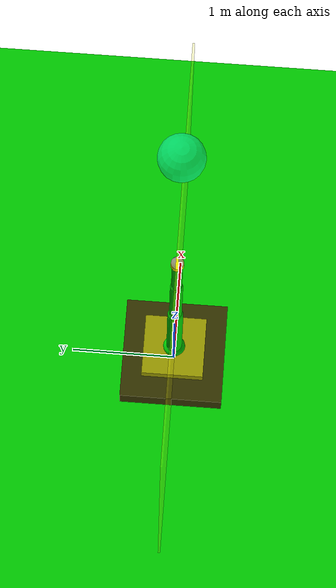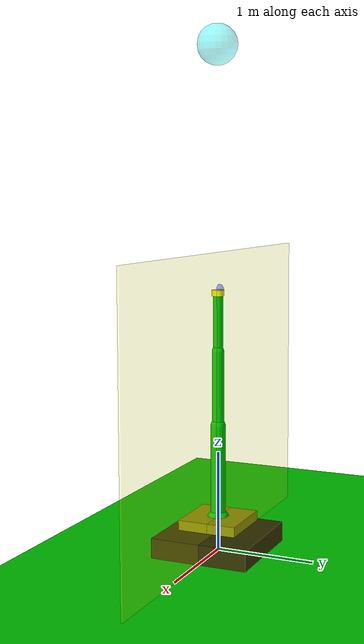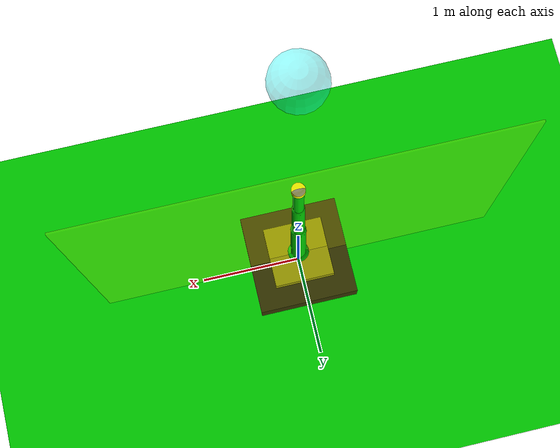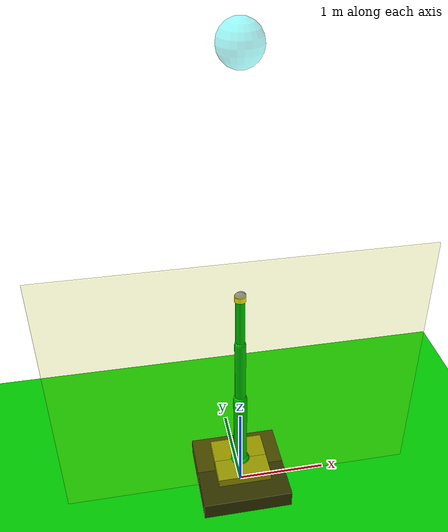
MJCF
<mujoco model='world'>
  <compiler coordinate='local' inertiafromgeom='true'/>

  <option gravity='0 0 -9.81' integrator='RK4' timestep='0.005'/>

  <default>
    <joint type='hinge'  pos='0 0 0' axis='0 1 0' limited='true' damping='0.05' />
    <geom type='capsule' conaffinity='1' contype='1' condim='3'
          friction='.1 .1 .1' rgba='0 .8 .0 1' pos='0 0 0' margin='0.001'/>
    <site type='sphere' rgba='1 1 1 0.5' pos='0 0 0' size='0.0001'/>
    <motor ctrllimited='true'/>
  </default>

  <asset>
    <texture name='texplane' type='2d' builtin='checker' rgb1='.2 .9 .4' rgb2='.1 .7 .2' width='100' height='100'/>
    <material name='MatPlane' reflectance='0.0' texture='texplane' texrepeat='1 1' texuniform='true'/>
  </asset>

  <visual>
    <quality shadowsize='4096'/>
  </visual>

  <custom>
    <numeric data='0' name='frame_skip'/>
  </custom>

  <size nstack='3000'/>

  b'<worldbody>\n    <light diffuse=".6 .6 .6" pos="0 30 30" dir="0 -1 -1"></light>\n    <geom name="floor" size="20 20 0.125" type="plane" material="MatPlane"></geom>\n    b'<body name="world.scorpion" pos="0 0 0">\n    <body name="world.scorpion.cart" pos="0 0 0">\n      <geom type="box" pos="0 0 0.1" size=".5 .5 .1" rgba=".2 .2 .0 1"></geom>\n      <body name="world.scorpion.head" pos="0 0 0">\n        <joint name="world.scorpion.head_a" axis="0 0 1" range="-120 +120"></joint>\n        <geom type="cylinder" fromto="0 0 .2  0 0 0.25" size=".15" rgba="1.5 1.5 0 1"></geom>\n        b'<body name="world.scorpion.tentacle" pos="0 0 .2">\n    <geom type="box" pos="0 0 0.1" size=".3 .3 .05" rgba="0.6 0.6 0 1"></geom>\n    <geom type="sphere" pos="0 0 .1" size="0.12"></geom>\n    <body name="world.scorpion.tentacle.s1" pos="0 0 0.17">\n      <joint name="world.scorpion.tentacle.s1_a" range=" -70 +70"></joint>\n      <geom fromto="0 0 0 0 0 .9" size="0.075"></geom>\n      <body name="world.scorpion.tentacle.s2" pos="0 0 .95">\n        <joint name="world.scorpion.tentacle.s2_a" range=" -120 +120"></joint>\n        <geom fromto="0 0 0 0 0 .7" size="0.06"></geom>\n        <body name="world.scorpion.tentacle.s3" pos="0 0 .75">\n          <joint name="world.scorpion.tentacle.s3_a" range=" -150 +150"></joint>\n          <geom fromto="0 0 0 0 0 .5" size="0.05"></geom>\n          <body name="world.scorpion.tentacle.head" pos="0 0 .5">\n            <geom type="cylinder" fromto="0 0 0  0 0 .06" rgba="1.2 1.2 0. 1" size=".06"></geom>\n            <site name="world.scorpion.tentacle.site_head" pos="0 0 0.06" rgba=".2 .2 1.5 0.5" size=".06"></site>\n          </body>\n        </body>\n      </body>\n    </body>\n  </body>\n\n  '\n        b'<body name="world.scorpion.target" pos="0 0 0">\n    <site name="world.scorpion.target.surface" type="box" size="2 0.01 1.5" pos="0 0 1.5" rgba="1 1 0 .1"></site>\n    <body name="world.scorpion.target.coords" pos="0 0 1.5">\n      <joint name="world.scorpion.target.coords_x" type="slide" axis="1 0 0" range="-2.0 +2.0"></joint>\n      <joint name="world.scorpion.target.coords_z" type="slide" axis="0 0 1" range="-1.0 +1.5"></joint>\n      <geom type="sphere" conaffinity="0" contype="0" rgba="0. 0. 0. 0." size=".05" mass="1e-3"></geom>\n      <site name="world.scorpion.target.site_center" pos="0 0 0" size="0.05" rgba="1.5 1.5 0. 0.9"></site>\n    </body>\n  </body>\n\n  '\n      </body>\n    </body>\n  </body>\n\n  '\n    b'<body name="world.ball" pos="0 0 5">\n    <joint name="world.ball.coords_x" type="slide" axis="1 0 0" range="-100.0 +100.0"></joint>\n    <joint name="world.ball.coords_y" type="slide" axis="0 1 0" range="-100.0 +100.0"></joint>\n    <joint name="world.ball.coords_z" type="slide" axis="0 0 1" range="-100.0 +100.0"></joint>\n    <geom type="sphere" conaffinity="1" contype="1" rgba="0.05 1. 3. .4" size=".2" mass="3e-1"></geom>\n    <site name="world.ball" pos="0 0 -.2" size=".001" rgba="0 0 0 0"></site>\n  </body>\n\n  '\n  </worldbody>\n'
  <sensor>

b'<jointpos name="world.scorpion.sensor_head_pos" joint="world.scorpion.head_a"></jointpos>\n    'b'<jointvel name="world.scorpion.sensor_head_vel" joint="world.scorpion.head_a"></jointvel>\n  '
b'<jointpos name="world.scorpion.tentacle.sensor_s1_pos" joint="world.scorpion.tentacle.s1_a"></jointpos>\n    'b'<jointvel name="world.scorpion.tentacle.sensor_s1_vel" joint="world.scorpion.tentacle.s1_a"></jointvel>\n    'b'<jointpos name="world.scorpion.tentacle.sensor_s2_pos" joint="world.scorpion.tentacle.s2_a"></jointpos>\n    'b'<jointvel name="world.scorpion.tentacle.sensor_s2_vel" joint="world.scorpion.tentacle.s2_a"></jointvel>\n    'b'<jointpos name="world.scorpion.tentacle.sensor_s3_pos" joint="world.scorpion.tentacle.s3_a"></jointpos>\n    'b'<jointvel name="world.scorpion.tentacle.sensor_s3_vel" joint="world.scorpion.tentacle.s3_a"></jointvel>\n  '
b'<jointpos name="world.scorpion.target.sensor_x" joint="world.scorpion.target.coords_x"></jointpos>\n    'b'<jointpos name="world.scorpion.target.sensor_z" joint="world.scorpion.target.coords_z"></jointpos>\n  '
b'<jointpos name="world.ball.sensor_x" joint="world.ball.coords_x"></jointpos>\n    'b'<jointpos name="world.ball.sensor_y" joint="world.ball.coords_y"></jointpos>\n    'b'<jointpos name="world.ball.sensor_z" joint="world.ball.coords_z"></jointpos>\n    'b'<jointvel name="world.ball.sensor_vx" joint="world.ball.coords_x"></jointvel>\n    'b'<jointvel name="world.ball.sensor_vy" joint="world.ball.coords_y"></jointvel>\n    'b'<jointvel name="world.ball.sensor_vz" joint="world.ball.coords_z"></jointvel>\n    'b'<accelerometer name="world.ball.sensor_accelerometer" site="world.ball"></accelerometer>\n  '
  </sensor>
  <actuator>

b'<motor name="world.scorpion.actuator_head" ctrlrange="-10 +10" joint="world.scorpion.head_a"></motor>\n    'b'<position name="world.scorpion.actuator_target_x" ctrlrange="-2 +2" kp="1" joint="world.scorpion.target.coords_x"></position>\n    'b'<position name="world.scorpion.actuator_target_z" ctrlrange="-1 +2" kp="1" joint="world.scorpion.target.coords_z"></position>\n  '
b'<motor name="world.scorpion.tentacle.actuator_s1" ctrlrange="-2000 +2000" joint="world.scorpion.tentacle.s1_a"></motor>\n    'b'<motor name="world.scorpion.tentacle.actuator_s2" ctrlrange="-1500 +1500" joint="world.scorpion.tentacle.s2_a"></motor>\n    'b'<motor name="world.scorpion.tentacle.actuator_s3" ctrlrange=" -500  +500" joint="world.scorpion.tentacle.s3_a"></motor>\n  '

  </actuator>

</mujoco>
